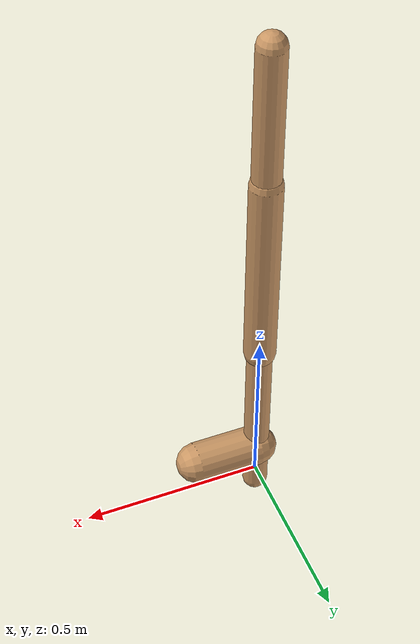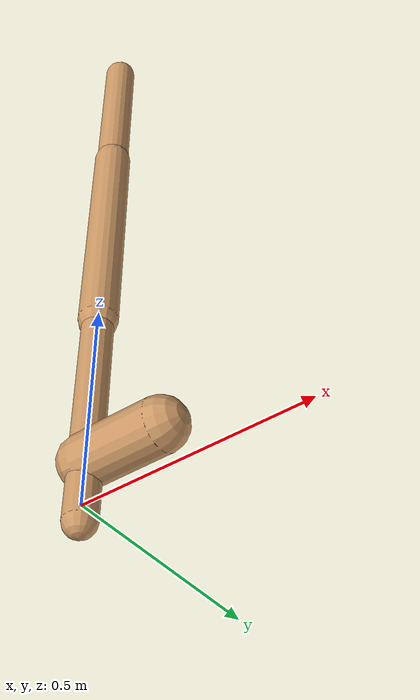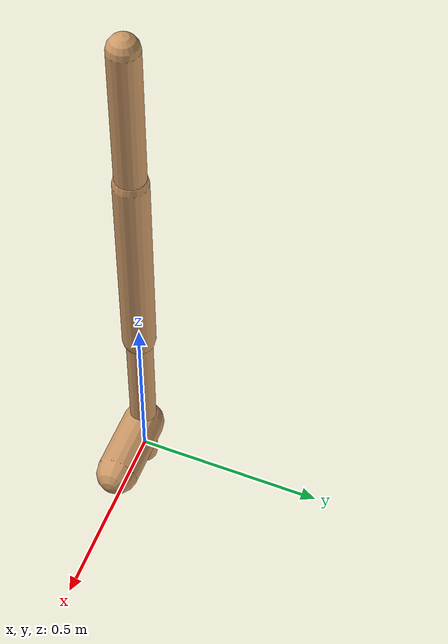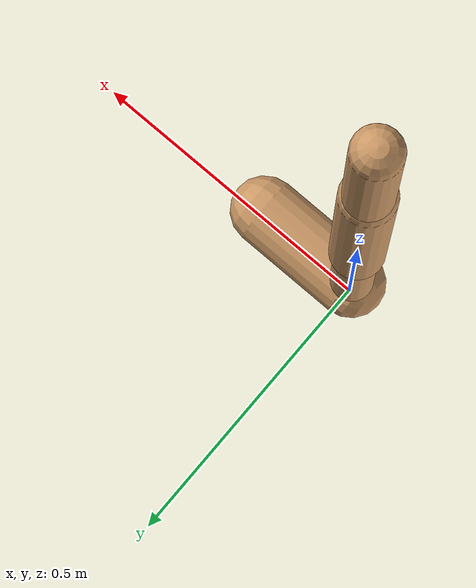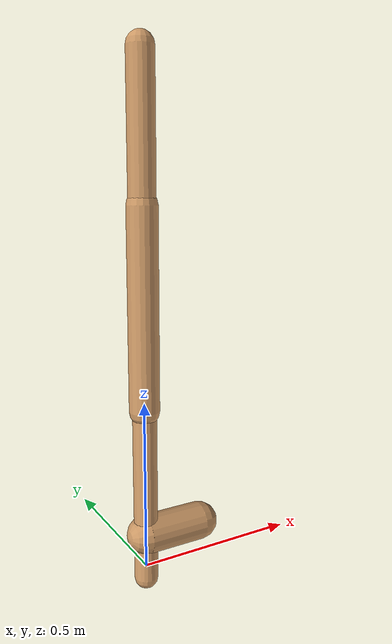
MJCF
<mujoco model="walker2d">
  <compiler angle="degree" coordinate="global" inertiafromgeom="true" />
  <default>
    <joint armature="0.01" damping=".1" limited="true" />
    <geom conaffinity="0" condim="3" contype="1" density="1000" friction="0.8 .1 .1" rgba="0.8 0.6 .4 1" />
  </default>
  <option integrator="RK4" timestep="0.002" />
  <worldbody>

    <body name="torso" pos="0 0 0.2555656524948419">
      <joint armature="0" axis="1 0 0" damping="0" limited="false" name="ignorex" pos="0 0 0" stiffness="0" type="slide" />
      <joint armature="0" axis="0 0 1" damping="0" limited="false" name="ignorez" pos="0 0 0" ref="1.25" stiffness="0" type="slide" />
      <joint armature="0" axis="0 1 0" damping="0" limited="false" name="ignorey" pos="0 0 0" stiffness="0" type="hinge" />
      <geom fromto="0 0 1.45 0 0 1.05" name="torso_geom" size="0.03878553079440601" type="capsule" />
      <body name="thigh">
        <joint axis="0 -1 0" name="thigh_joint" pos="0 0 1.05" range="-150 0" type="hinge" />
        <geom fromto="0.0 0.0 1.05 0.0 0.0 0.478942585660338" name="thigh_geom" size="0.04403557037764466" type="capsule" />
        <body name="leg" pos="0.0 0.0 -0.121057414339662">
          <joint axis="0 -1 0" name="leg_joint" pos="0 0 0.6" range="-150 0" type="hinge" />
          <geom fromto="0.0 0.0 0.6 0.0 0.0 -0.03450823815517995" name="leg_geom" size="0.03522845630211573" type="capsule" />
          <body name="foot" pos="0.0 0.0 -0.13450823815517995">
            <joint axis="0 -1 0" name="foot_joint" pos="0 0 0.1" range="-45 45" type="hinge" />
            <geom fromto="0.0 0.0 0.1 0.17943308664447086 0.0 0.1" name="foot_geom" size="0.056418749800449725" type="capsule" />
          </body>
        </body>
      </body>

      <body name="thigh_left">
        <joint axis="0 -1 0" name="thigh_left_joint" pos="0 0 1.05" range="-150 0" type="hinge" />
        <geom fromto="0.0 0.0 1.05 0.0 0.0 0.478942585660338" name="thigh_left_geom" rgba=".7 .3 .6 1" size="0.04403557037764466" type="capsule" />
        <body name="leg_left" pos="0.0 0.0 -0.121057414339662">
          <joint axis="0 -1 0" name="leg_left_joint" pos="0 0 0.6" range="-150 0" type="hinge" />
          <geom fromto="0.0 0.0 0.6 0.0 0.0 -0.03450823815517995" name="leg_left_geom" rgba=".7 .3 .6 1" size="0.03522845630211573" type="capsule" />
          <body name="foot_left" pos="0.0 0.0 -0.13450823815517995">
            <joint axis="0 -1 0" name="foot_left_joint" pos="0 0 0.1" range="-45 45" type="hinge" />
            <geom fromto="0.0 0.0 0.1 0.17943308664447086 0.0 0.1" name="foot_left_geom" rgba=".7 .3 .6 1" size="0.056418749800449725" type="capsule" />
          </body>
        </body>
      </body>
    </body>
  </worldbody>
  <actuator>

    <motor ctrllimited="true" ctrlrange="-1.0 1.0" gear="100" joint="thigh_joint" />
    <motor ctrllimited="true" ctrlrange="-1.0 1.0" gear="100" joint="leg_joint" />
    <motor ctrllimited="true" ctrlrange="-1.0 1.0" gear="100" joint="foot_joint" />
    <motor ctrllimited="true" ctrlrange="-1.0 1.0" gear="100" joint="thigh_left_joint" />
    <motor ctrllimited="true" ctrlrange="-1.0 1.0" gear="100" joint="leg_left_joint" />
    <motor ctrllimited="true" ctrlrange="-1.0 1.0" gear="100" joint="foot_left_joint" />

  </actuator>
</mujoco>
